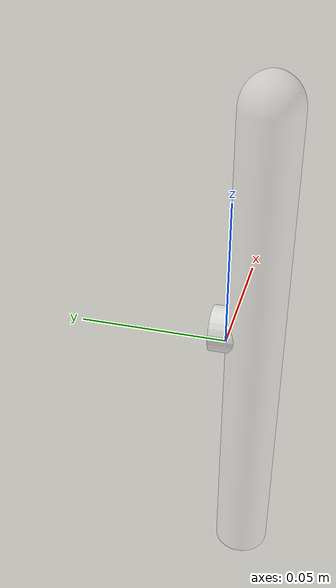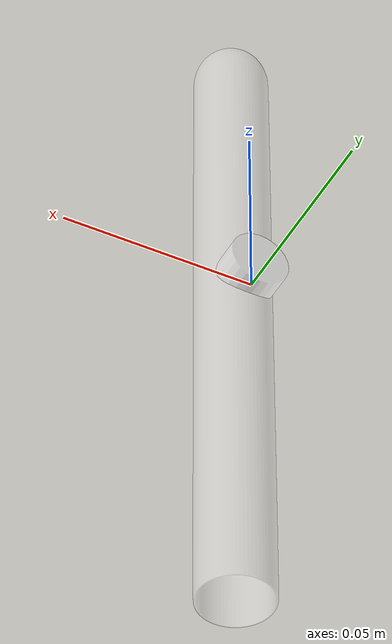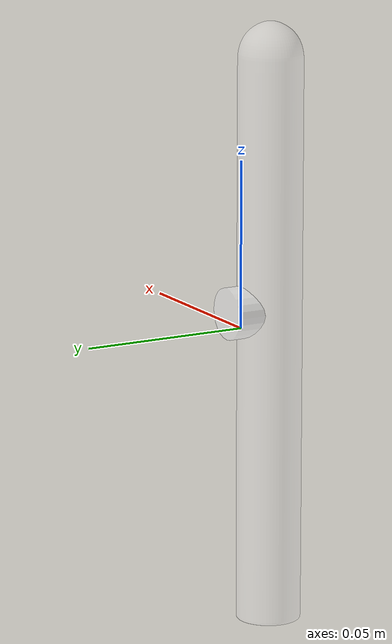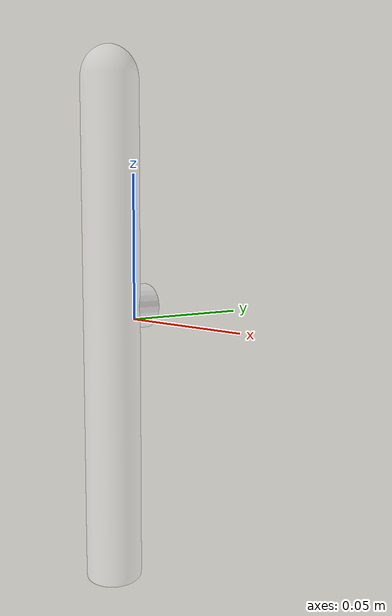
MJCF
<?xml version="1.0" ?>
<mujoco model="chemistry_tube">
  <asset>
    <material name="Glass" specular="0.4000000000000001" shininess="0.001" rgba="1.00000000 1.00000000 1.00000000 0.3"/>
    <mesh file="chemistry_tube.obj" scale="1.2 1.2 1.2"/>
    <mesh file="chemistry_tube/chemistry_tube_collision_0.obj" scale="1.2 1.2 1.2"/>
    <mesh file="chemistry_tube/chemistry_tube_collision_1.obj" scale="1.2 1.2 1.2"/>
    <mesh file="chemistry_tube/chemistry_tube_collision_2.obj" scale="1.2 1.2 1.2"/>
    <mesh file="chemistry_tube/chemistry_tube_collision_3.obj" scale="1.2 1.2 1.2"/>
    <mesh file="chemistry_tube/chemistry_tube_collision_4.obj" scale="1.2 1.2 1.2"/>
    <mesh file="chemistry_tube/chemistry_tube_collision_5.obj" scale="1.2 1.2 1.2"/>
    <mesh file="chemistry_tube/chemistry_tube_collision_6.obj" scale="1.2 1.2 1.2"/>
    <mesh file="chemistry_tube/chemistry_tube_collision_7.obj" scale="1.2 1.2 1.2"/>
      <material name="CaSO4" rgba="1 1 1 0.7"/>
    <material name="CuCl2" rgba="0.141 1.0 0.174 0.4"/>
    <material name="CuSO4" rgba="0 0.45 1 0.4"/>
    <material name="FeCl3" rgba="0.6475 0.5686 0.023 0.4"/>
    <material name="KMnO4" rgba="0.5 0 0.5 0.4"/>
    <material name="I2" rgba="0.3 0.13 0.0 0.4"/>
    <material name="K2CrO4" rgba="0.57 0.12 0.013 0.4"/>
    <material name="NaCl" rgba="1 1 1 0.3"/>
</asset>
  <worldbody>
    <body name="chemistry_tube" euler="1.57 0 0">
      <inertial pos="0 0.090 0" mass="0.02" diaginertia="0.0008 0.0008 0.0005"/>
      <geom material="Glass" mesh="chemistry_tube" class="visual"/>
      <geom mesh="chemistry_tube_collision_0" class="collision"/>
      <geom mesh="chemistry_tube_collision_1" class="collision"/>
      <geom mesh="chemistry_tube_collision_2" class="collision"/>
      <geom mesh="chemistry_tube_collision_3" class="collision"/>
      <geom mesh="chemistry_tube_collision_4" class="collision"/>
      <geom mesh="chemistry_tube_collision_5" class="collision"/>
      <geom mesh="chemistry_tube_collision_6" class="collision"/>
      <geom mesh="chemistry_tube_collision_7" class="collision"/>
      <site class="grasppoint" pos="0 0.0721 0"/>
      <site class="grasppoint" pos="0 0.0961 0"/>
      <site class="grasppoint" pos="0 0.1141 0"/>
      <geom name="solution" type="cylinder" size="0.007720 0.004800" pos="0 0.004800 0" material="CaSO4" class="visual"/>
      <site name="top_site" pos="0 0.180 0" size="0.01" rgba="1 0 0 0"/>
      <site name="bottom_site" pos="0 0 0" size="0.01" rgba="0 1 0 0"/>
</body>
  </worldbody>
  <compiler boundmass="0.015" boundinertia="1e-05" angle="radian"/>
  <default>
    <default class="visual">
      <geom group="2" type="mesh" contype="0" conaffinity="0" density="50"/>
    </default>
    <default class="collision">
      <geom group="3" type="mesh" density="50" friction="1.5 0.1 0.1" solimp="0.9 0.95 0.001" solref="0.02 1"/>
    </default>
    <default class="grasppoint">
      <site type="sphere" size="0.005" group="4" rgba="0 0 1 1"/>
    </default>
  </default>
</mujoco>
